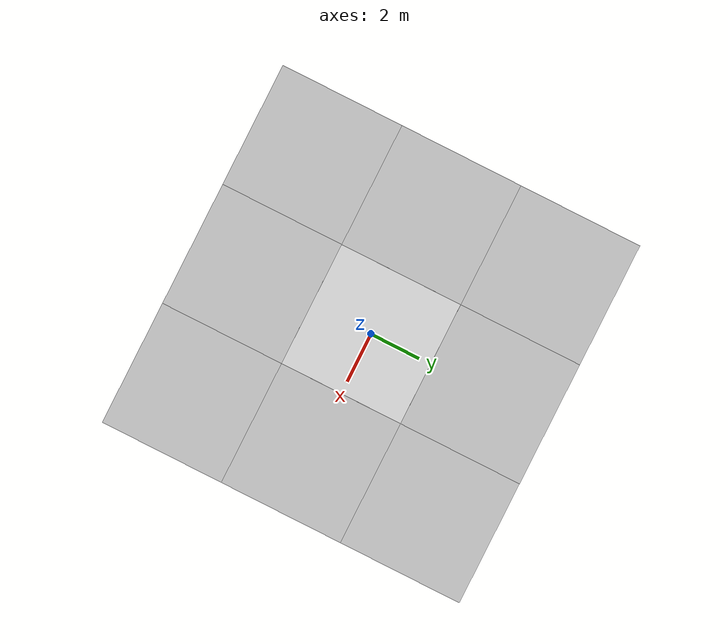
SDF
<?xml version="1.0"?>
<sdf version='1.5'>
  <model name='plane_catapult'>
    <include>
      <uri>model://plane</uri>
    </include>

    <include>
      <uri>file:///home/xpp/Documents/px4_cmd/src/PX4_cmd/models/rgb_camera</uri>
      <pose>-0.15 0 0.15 0 1.57 0</pose>
    </include>

    <joint name="fpv_cam_joint" type="fixed">
      <child>fpv_cam::link</child>
      <parent>plane::base_link</parent>
      <axis>
        <xyz>-0.15 0 0</xyz>
        <limit>
          <upper>0</upper>
          <lower>0</lower>
        </limit>
      </axis>
    </joint>

    <!--fixedwing catapult-->
    <plugin name='catapult_plugin' filename='libgazebo_catapult_plugin.so'>
      <robotNamespace/>
      <link_name>plane::base_link</link_name>
      <commandSubTopic>/gazebo/command/motor_speed</commandSubTopic>
      <motorNumber>4</motorNumber>
      <force>50.0</force>
      <duration>0.5</duration>
    </plugin>
  </model>
</sdf>

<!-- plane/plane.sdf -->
<sdf version='1.5'>
  <model name='plane_catapult'>
    <include>
      <uri>model://plane</uri>
    </include>

    <!--fixedwing catapult-->
    <plugin name='catapult_plugin' filename='libgazebo_catapult_plugin.so'>
      <robotNamespace/>
      <link_name>plane::base_link</link_name>
      <commandSubTopic>/gazebo/command/motor_speed</commandSubTopic>
      <motorNumber>4</motorNumber>
      <force>50.0</force>
      <duration>0.5</duration>
    </plugin>
  </model>
</sdf>

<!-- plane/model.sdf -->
<sdf version='1.4'>
    <model name='plane'>
        <static>true</static>
        <link name='link'>

            <collision name='collision'>
                <geometry>
                    <plane>
                        <normal>0 0 1</normal>
                        <size>15 15</size>
                    </plane>
                </geometry>
                <surface>
                    <friction>
                        <ode>
                            <mu>100</mu>
                            <mu2>50</mu2>
                        </ode>
                    </friction>
                </surface>
            </collision>

            <visual name='visual_0'>
                <pose>0 0 0 0 0 0</pose>
                <cast_shadows>false</cast_shadows>
                <geometry>
                    <plane>
                        <normal>0 0 1</normal>
                        <size>5 5</size>
                    </plane>
                </geometry>
                <material>
                    <script>
                        <uri>model://plane/materials/scripts</uri>
                        <uri>model://plane/materials/textures</uri>
                        <name>vrc/pavement</name>
                    </script>
                </material>
            </visual>

            <visual name='visual_1'>
                <pose>0 5 0 0 0 0</pose>
                <cast_shadows>false</cast_shadows>
                <geometry>
                    <plane>
                        <normal>0 0 1</normal>
                        <size>5 5</size>
                    </plane>
                </geometry>
                <material>
                    <script>
                        <uri>model://plane/materials/scripts</uri>
                        <uri>model://plane/materials/textures</uri>
                        <name>vrc/pavement</name>
                    </script>
                </material>
            </visual>

            <visual name='visual_2'>
                <pose>0 -5 0 0 0 0</pose>
                <cast_shadows>false</cast_shadows>
                <geometry>
                    <plane>
                        <normal>0 0 1</normal>
                        <size>5 5</size>
                    </plane>
                </geometry>
                <material>
                    <script>
                        <uri>model://plane/materials/scripts</uri>
                        <uri>model://plane/materials/textures</uri>
                        <name>vrc/pavement</name>
                    </script>
                </material>
            </visual>

            <visual name='visual_3'>
                <pose>-5 -5 0 0 0 0</pose>
                <cast_shadows>false</cast_shadows>
                <geometry>
                    <plane>
                        <normal>0 0 1</normal>
                        <size>5 5</size>
                    </plane>
                </geometry>
                <material>
                    <script>
                        <uri>model://plane/materials/scripts</uri>
                        <uri>model://plane/materials/textures</uri>
                        <name>vrc/pavement</name>
                    </script>
                </material>
            </visual>

            <visual name='visual_4'>
                <pose>-5 0 0 0 0 0</pose>
                <cast_shadows>false</cast_shadows>
                <geometry>
                    <plane>
                        <normal>0 0 1</normal>
                        <size>5 5</size>
                    </plane>
                </geometry>
                <material>
                    <script>
                        <uri>model://plane/materials/scripts</uri>
                        <uri>model://plane/materials/textures</uri>
                        <name>vrc/pavement</name>
                    </script>
                </material>
            </visual>

            <visual name='visual_5'>
                <pose>-5 5 0 0 0 0</pose>
                <cast_shadows>false</cast_shadows>
                <geometry>
                    <plane>
                        <normal>0 0 1</normal>
                        <size>5 5</size>
                    </plane>
                </geometry>
                <material>
                    <script>
                        <uri>model://plane/materials/scripts</uri>
                        <uri>model://plane/materials/textures</uri>
                        <name>vrc/pavement</name>
                    </script>
                </material>
            </visual>

            <visual name='visual_6'>
                <pose>5 -5 0 0 0 0</pose>
                <cast_shadows>false</cast_shadows>
                <geometry>
                    <plane>
                        <normal>0 0 1</normal>
                        <size>5 5</size>
                    </plane>
                </geometry>
                <material>
                    <script>
                        <uri>model://plane/materials/scripts</uri>
                        <uri>model://plane/materials/textures</uri>
                        <name>vrc/pavement</name>
                    </script>
                </material>
            </visual>

            <visual name='visual_7'>
                <pose>5 0 0 0 0 0</pose>
                <cast_shadows>false</cast_shadows>
                <geometry>
                    <plane>
                        <normal>0 0 1</normal>
                        <size>5 5</size>
                    </plane>
                </geometry>
                <material>
                    <script>
                        <uri>model://plane/materials/scripts</uri>
                        <uri>model://plane/materials/textures</uri>
                        <name>vrc/pavement</name>
                    </script>
                </material>
            </visual>

            <visual name='visual_8'>
                <pose>5 5 0 0 0 0</pose>
                <cast_shadows>false</cast_shadows>
                <geometry>
                    <plane>
                        <normal>0 0 1</normal>
                        <size>5 5</size>
                    </plane>
                </geometry>
                <material>
                    <script>
                        <uri>model://plane/materials/scripts</uri>
                        <uri>model://plane/materials/textures</uri>
                        <name>vrc/pavement</name>
                    </script>
                </material>
            </visual>

        </link>
    </model>
</sdf>

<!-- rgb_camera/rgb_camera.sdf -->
<sdf version="1.6">
	<model name="rgb_camera">
		<pose>0.0 0.0 0.0 0.0 0.0 0.0</pose>
		<link name="link">
			<inertial>
				<mass>0.015</mass>
				<inertia>
					<ixx>4.15e-6</ixx>
					<ixy>0</ixy>
					<ixz>0</ixz>
					<iyy>2.407e-6</iyy>
					<iyz>0</iyz>
					<izz>2.407e-6</izz>
				</inertia>
			</inertial>
			<collision name="collision">
				<geometry>
					<box>
						<size>0.01 0.01 0.01</size>
					</box>
				</geometry>
				<max_contacts>10</max_contacts>
				<surface>
					<contact>
						<ode />
					</contact>
					<bounce />
					<friction>
						<ode />
					</friction>
				</surface>
			</collision>
			<visual name="visual">
				<geometry>
					<box>
						<size>0.01 0.01 0.01</size>
					</box>
				</geometry>
			</visual>
			<sensor name="camera" type="camera">
				<camera name="__default__">
					<horizontal_fov>1.047</horizontal_fov>
					<image>
						<width>640</width>
						<height>480</height>
					</image>
					<clip>
						<near>0.1</near>
						<far>100</far>
					</clip>
					<lens>
						<type>custom</type>
						<custom_function>
							<c1>1.05</c1>
							<c2>4</c2>
							<f>1</f>
							<fun>tan</fun>
						</custom_function>
						<scale_to_hfov>1</scale_to_hfov>
						<cutoff_angle>3.1415</cutoff_angle>
						<env_texture_size>1080</env_texture_size>
					</lens>
				</camera>
				<always_on>1</always_on>
				<update_rate>30</update_rate>
				<visualize>1</visualize>
				<plugin name="camera_plugin" filename="libgazebo_ros_camera.so">
					<robotNamespace />
					<alwaysOn>true</alwaysOn>
					<imageTopicName>image_raw</imageTopicName>
					<cameraInfoTopicName>camera_info</cameraInfoTopicName>
					<updateRate>30.0</updateRate>
					<cameraName>usb_cam</cameraName>
					<frameName>/robot_camera_link</frameName>
					<CxPrime>320.5</CxPrime>
					<Cx>320.5</Cx>
					<Cy>240.5</Cy>
					<hackBaseline>0</hackBaseline>
					<focalLength>277.191356</focalLength>
					<distortionK1>0.0</distortionK1>
					<distortionK2>0.0</distortionK2>
					<distortionK3>0.0</distortionK3>
					<distortionT1>0.0</distortionT1>
					<distortionT2>0.0</distortionT2>
				</plugin>
				<plugin name="GstCameraPlugin" filename="libgazebo_gst_camera_plugin.so">
					<robotNamespace />
					<udpPort>5600</udpPort>
				</plugin>
			</sensor>
			<self_collide>0</self_collide>
			<kinematic>0</kinematic>
		</link>
	</model>
</sdf>
<!--this sdf file is generated by PX4 Cmd generator.py  -->
